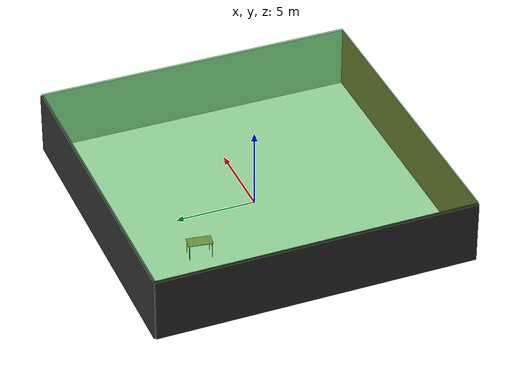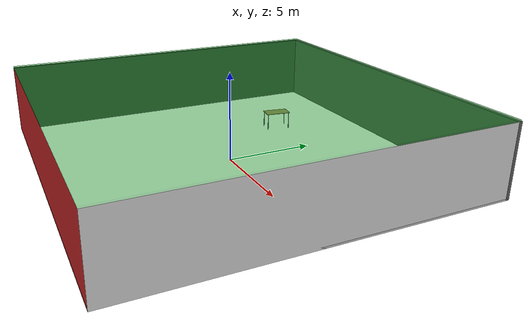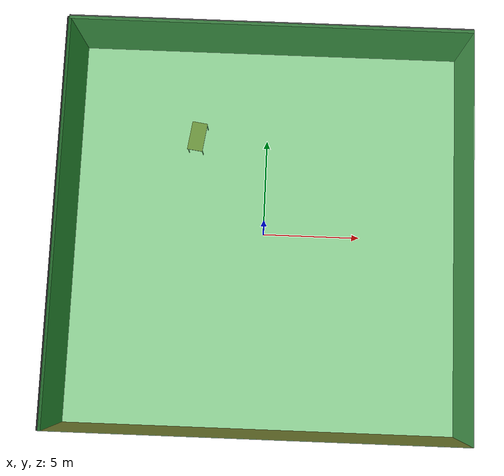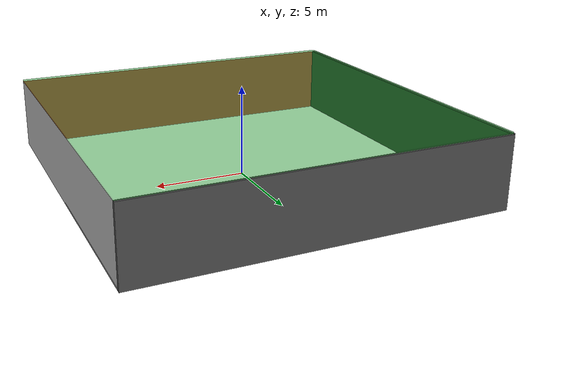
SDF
<sdf version="1.4">
 <world name="default">
  <physics type="ode">
   <max_step_size>0.001</max_step_size>
   <real_time_factor>1</real_time_factor>
   <real_time_update_rate>1000</real_time_update_rate>
   <gravity>0 0 -9.8</gravity>
  </physics>
  <scene><ambient>0.4 0.4 0.4 1</ambient><background>0.7 0.7 0.7 1</background><shadows>1</shadows></scene>
  <model name="Surrounding">
   <static>1</static>
   <link name="Ceiling">
    <collision name="Ceiling_Collision"><geometry><box><size>20 20 0.1</size></box></geometry></collision>
    <visual name="Ceiling_Visual">
     <geometry><box><size>20 20 0.1</size></box></geometry>
     <material>
      <script><uri>file://media/materials/scripts/gazebo.material</uri><name>Gazebo/GreenTransparent</name></script>
     </material>
    </visual>
    <pose>0 0 4.05 0 0 0</pose>
   </link>
   <link name="Wall_South">
    <collision name="Wall_South_Collision">
     <geometry><box><size>20 0 4</size></box></geometry>
     <pose>0 0 2 0 -0 0</pose>
    </collision>
    <visual name="Wall_South_Visual">
     <pose>0 0 2 0 -0 0</pose>
     <geometry><box><size>20 0 4</size></box></geometry>
     <material>
      <script><uri>file://media/materials/scripts/gazebo.material</uri><name>Gazebo/RedBright</name></script>
     </material>
    </visual>
    <velocity_decay><linear>0</linear><angular>0</angular></velocity_decay>
    <pose>0 -10 0 0 -0 0</pose>
   </link>
   <link name="Wall_East">
    <collision name="Wall_21_Collision">
     <geometry><box><size>20 0 4</size></box></geometry>
     <pose>0 0 2 0 -0 0</pose>
    </collision>
    <visual name="Wall_21_Visual">
     <pose>0 0 2 0 -0 0</pose>
     <geometry><box><size>20 0 4</size></box></geometry>
     <material>
      <script><uri>file://media/materials/scripts/gazebo.material</uri><name>Gazebo/PioneerBody</name></script>
     </material>
    </visual>
    <velocity_decay><linear>0</linear><angular>0</angular></velocity_decay>
    <pose>10 0 0 0 -0 1.5708</pose>
   </link>
   <link name="Wall_North">
    <collision name="Wall_22_Collision">
     <geometry><box><size>20 0.2 4</size></box></geometry>
     <pose>0 0 2 0 -0 0</pose>
    </collision>
    <visual name="Wall_22_Visual">
     <pose>0 0 2 0 -0 0</pose>
     <geometry><box><size>20 0.2 4</size></box></geometry>
     <material>
      <script><uri>file://media/materials/scripts/gazebo.material</uri><name>Gazebo/DarkGrey</name></script>
     </material>
    </visual>
    <velocity_decay><linear>0</linear><angular>0</angular></velocity_decay>
    <pose>0 10 0 0 -0 0</pose>
   </link>
   <link name="Wall_West">
    <collision name="Wall_23_Collision">
     <geometry><box><size>20 0.2 4</size></box></geometry>
     <pose>0 0 2 0 -0 0</pose>
    </collision>
    <visual name="Wall_23_Visual">
     <pose>0 0 2 0 -0 0</pose>
     <geometry><box><size>20 0.2 4</size></box></geometry>
     <material>
      <script><uri>file://media/materials/scripts/gazebo.material</uri><name>Gazebo/FlatBlack</name></script>
     </material>
    </visual>
    <velocity_decay><linear>0</linear><angular>0</angular></velocity_decay>
    <pose>-10 0 0 0 0 -1.5708</pose>
   </link>
   <link name="Ground_link">
    <collision name="collision">
     <pose>0 0 .05 0 -0 0</pose>
     <geometry><box><size>20 20 0.1</size></box></geometry>
    </collision>
    <visual name="visual">
     <pose>0 0 .05 0 -0 0</pose>
     <geometry><box><size>20 20 0.1</size></box></geometry>
     <material>
      <script><uri>file://media/materials/scripts/gazebo.material</uri><name>Gazebo/GreyTransparent</name></script>
     </material>
    </visual>
   </link>
   <static>1</static>
  </model>
  <spherical_coordinates>
   <surface_model>EARTH_WGS84</surface_model>
   <latitude_deg>0</latitude_deg>
   <longitude_deg>0</longitude_deg>
   <elevation>0</elevation>
   <heading_deg>0</heading_deg>
  </spherical_coordinates>
  <light name="lightball_0" type="diffuse">
   <diffuse>0.8 0.8 0.8 1</diffuse>
   <specular>0.2 0.2 0.2 1</specular>
   <attenuation>
    <range>100</range>
    <constant>0.7</constant>
    <linear>0.01</linear>
    <quadratic>0.001</quadratic>
   </attenuation>
   <direction>-0.5 0.1 -0.9</direction>
   <pose>-1.91338737263 -7.99612241187 0.649817366543 0 0 0</pose>
  </light>
  <light name="lightball_1" type="diffuse">
   <diffuse>0.8 0.8 0.8 1</diffuse>
   <specular>0.2 0.2 0.2 1</specular>
   <attenuation>
    <range>100</range>
    <constant>0.7</constant>
    <linear>0.01</linear>
    <quadratic>0.001</quadratic>
   </attenuation>
   <direction>-0.5 0.1 -0.9</direction>
   <pose>-1.01798209828 -3.38653671228 3.20184516321 0 0 0</pose>
  </light>
  <light name="lightball_2" type="diffuse">
   <diffuse>0.8 0.8 0.8 1</diffuse>
   <specular>0.2 0.2 0.2 1</specular>
   <attenuation>
    <range>100</range>
    <constant>0.7</constant>
    <linear>0.01</linear>
    <quadratic>0.001</quadratic>
   </attenuation>
   <direction>-0.5 0.1 -0.9</direction>
   <pose>9.76655247439 7.2582872673 3.75404648966 0 0 0</pose>
  </light>
  <light name="lightball_3" type="diffuse">
   <diffuse>0.8 0.8 0.8 1</diffuse>
   <specular>0.2 0.2 0.2 1</specular>
   <attenuation>
    <range>100</range>
    <constant>0.7</constant>
    <linear>0.01</linear>
    <quadratic>0.001</quadratic>
   </attenuation>
   <direction>-0.5 0.1 -0.9</direction>
   <pose>-5.16964060445 -9.98610687301 1.07109905291 0 0 0</pose>
  </light>
  <include><uri>model://table</uri><pose>-3.65218490242 4.91994297472 0 0 0 1.42536846139</pose></include>
 </world>
</sdf>

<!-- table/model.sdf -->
<sdf version="1.5">
  <model name="table">
    <static>true</static>
    <link name="link">
      <collision name="surface">
        <pose>0 0 1.0 0 0 0</pose>
        <geometry>
          <box>
            <size>1.5 0.8 0.03</size>
          </box>
        </geometry>
        <surface>
          <friction>
            <ode>
              <mu>0.6</mu>
              <mu2>0.6</mu2>
            </ode>
          </friction>
        </surface>
      </collision>
      <visual name="visual1">
        <pose>0 0 1.0 0 0 0</pose>
        <geometry>
          <box>
            <size>1.5 0.8 0.03</size>
          </box>
        </geometry>
        <material>
          <script>
            <uri>model://media/materials/scripts/gazebo.material</uri>
            <name>Gazebo/Wood</name>
          </script>
        </material>
      </visual>
      <collision name="front_left_leg">
        <pose>0.68 0.38 0.5 0 0 0</pose>
        <geometry>
          <cylinder>
            <radius>0.02</radius>
            <length>1.0</length>
          </cylinder>
        </geometry>
      </collision>
      <visual name="front_left_leg">
        <pose>0.68 0.38 0.5 0 0 0</pose>
        <geometry>
          <cylinder>
            <radius>0.02</radius>
            <length>1.0</length>
          </cylinder>
        </geometry>
        <material>
          <script>
            <uri>model://media/materials/scripts/gazebo.material</uri>
            <name>Gazebo/Grey</name>
          </script>
        </material>
      </visual>
      <collision name="front_right_leg">
        <pose>0.68 -0.38 0.5 0 0 0</pose>
        <geometry>
          <cylinder>
            <radius>0.02</radius>
            <length>1.0</length>
          </cylinder>
        </geometry>
      </collision>
      <visual name="front_right_leg">
        <pose>0.68 -0.38 0.5 0 0 0</pose>
        <geometry>
          <cylinder>
            <radius>0.02</radius>
            <length>1.0</length>
          </cylinder>
        </geometry>
        <material>
          <script>
            <uri>model://media/materials/scripts/gazebo.material</uri>
            <name>Gazebo/Grey</name>
          </script>
        </material>
      </visual>
      <collision name="back_right_leg">
        <pose>-0.68 -0.38 0.5 0 0 0</pose>
        <geometry>
          <cylinder>
            <radius>0.02</radius>
            <length>1.0</length>
          </cylinder>
        </geometry>
      </collision>
      <visual name="back_right_leg">
        <pose>-0.68 -0.38 0.5 0 0 0</pose>
        <geometry>
          <cylinder>
            <radius>0.02</radius>
            <length>1.0</length>
          </cylinder>
        </geometry>
        <material>
          <script>
            <uri>model://media/materials/scripts/gazebo.material</uri>
            <name>Gazebo/Grey</name>
          </script>
        </material>
      </visual>
      <collision name="back_left_leg">
        <pose>-0.68 0.38 0.5 0 0 0</pose>
        <geometry>
          <cylinder>
            <radius>0.02</radius>
            <length>1.0</length>
          </cylinder>
        </geometry>
      </collision>
      <visual name="back_left_leg">
        <pose>-0.68 0.38 0.5 0 0 0</pose>
        <geometry>
          <cylinder>
            <radius>0.02</radius>
            <length>1.0</length>
          </cylinder>
        </geometry>
        <material>
          <script>
            <uri>model://media/materials/scripts/gazebo.material</uri>
            <name>Gazebo/Grey</name>
          </script>
        </material>
      </visual>
    </link>
  </model>
</sdf>
